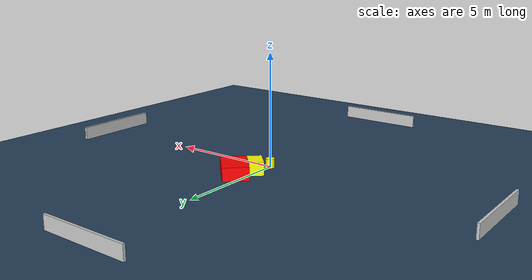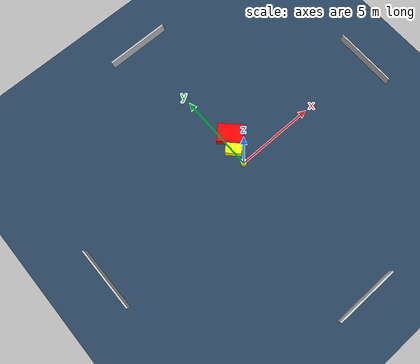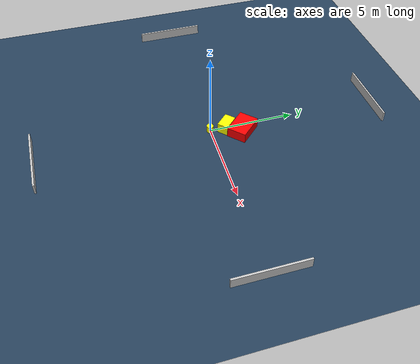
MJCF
<?xml version="1.0" ?>
<mujoco model="generated_environment">
  <option timestep="0.01" integrator="RK4" cone="elliptic"/>
  <default>
    <geom density="1"/>
  </default>
  <asset>
    <texture builtin="gradient" height="3072" name="skybox" rgb1="0.3 0.5 0.7" rgb2="0 0 0" type="skybox" width="512"/>
    <texture builtin="checker" height="300" name="groundplane" rgb1="0.2 0.3 0.4" rgb2="0.1 0.2 0.3" type="2d" width="300"/>
    <material name="groundplane" reflectance="0.2" texrepeat="5 5" texture="groundplane"/>
  </asset>
  <worldbody>
    <light dir="0 0 -1" directional="true" pos="0 0 1.5"/>
    <geom condim="3" friction="0.5 0.005 0.001" material="groundplane" name="floor" pos="0 0 0" size="0 0 0.05" type="plane"/>
    <body name="walls">
      <geom name="wall_1" condim="4" pos="-10.0 0.0 0.3" rgba="0.800000011920929 0.800000011920929 0.800000011920929 1.0" size="0.05 2.0 0.3" type="box"/>
      <geom name="wall_2" condim="4" pos="10.0 0.0 0.3" rgba="0.800000011920929 0.800000011920929 0.800000011920929 1.0" size="0.05 2.0 0.3" type="box"/>
      <geom name="wall_3" condim="4" pos="0.0 -10.0 0.3" rgba="0.800000011920929 0.800000011920929 0.800000011920929 1.0" size="2.0 0.05 0.3" type="box"/>
      <geom name="wall_4" condim="4" pos="0.0 10.0 0.3" rgba="0.800000011920929 0.800000011920929 0.800000011920929 1.0" size="2.0 0.05 0.3" type="box"/>
    </body>
    <body name="robot">
      <joint name="joint_x" type="slide" pos="0 0 0" axis="1 0 0"/>
      <joint name="joint_y" type="slide" pos="0 0 0" axis="0 1 0"/>
      <geom name="robot" type="cylinder" pos="0.0 0.0 0.2" size="0.2 0.2 0.0" mass="5.0" friction="1.0 0.005 0.0001" condim="4" rgba="1.0 1.0 0.0 1.0"/>
    </body>
    <body name="obstacle_1_movable">
      <geom name="obstacle_1_movable" condim="4" pos="0.06570527510446465 0.9610073977243666 0.3" euler="0 0 314.46670228024607" friction="0.0 0.005 0.001" rgba="1.0 1.0 0.0 1.0" size="0.4876458507442732 0.32007439360266954 0.3" type="box" mass="0.1"/>
      <joint type="free"/>
    </body>
    <body name="obstacle_2_static">
      <geom name="obstacle_2_static" condim="4" pos="0.5345154518877181 1.7892681272165223 0.3" euler="0 0 134.00210173848262" friction="0.0 0.005 0.001" rgba="1.0 0.0 0.0 1.0" size="0.7912051947734857 0.5630514225359133 0.3" type="box"/>
    </body>
  </worldbody>
  <actuator>
    <motor name="actuator_x" joint="joint_x" gear="1" ctrlrange="-1 1"/>
    <motor name="actuator_y" joint="joint_y" gear="1" ctrlrange="-1 1"/>
  </actuator>
</mujoco>
